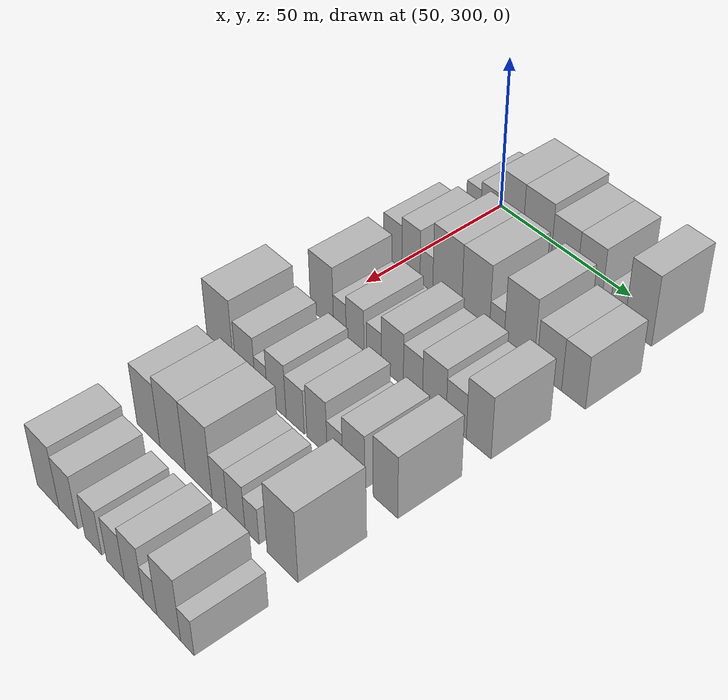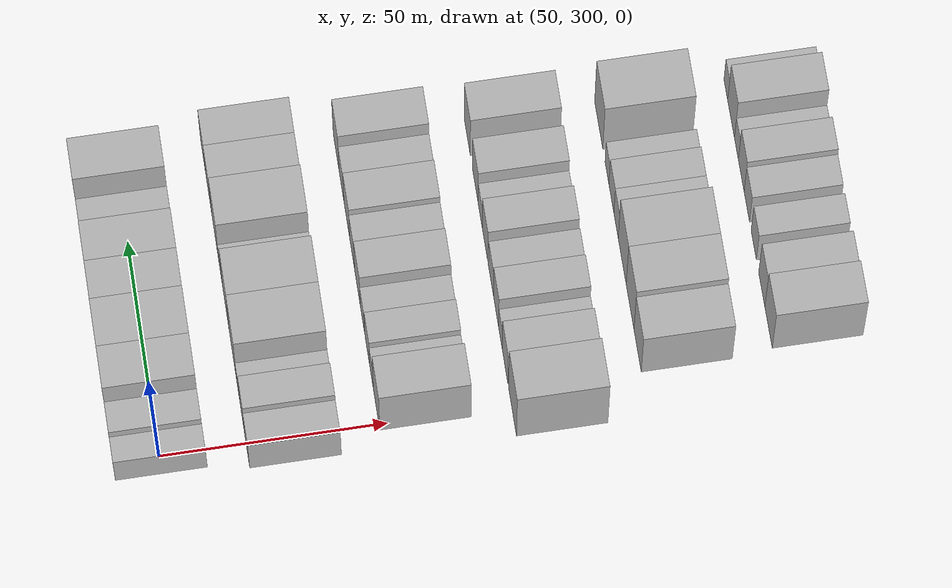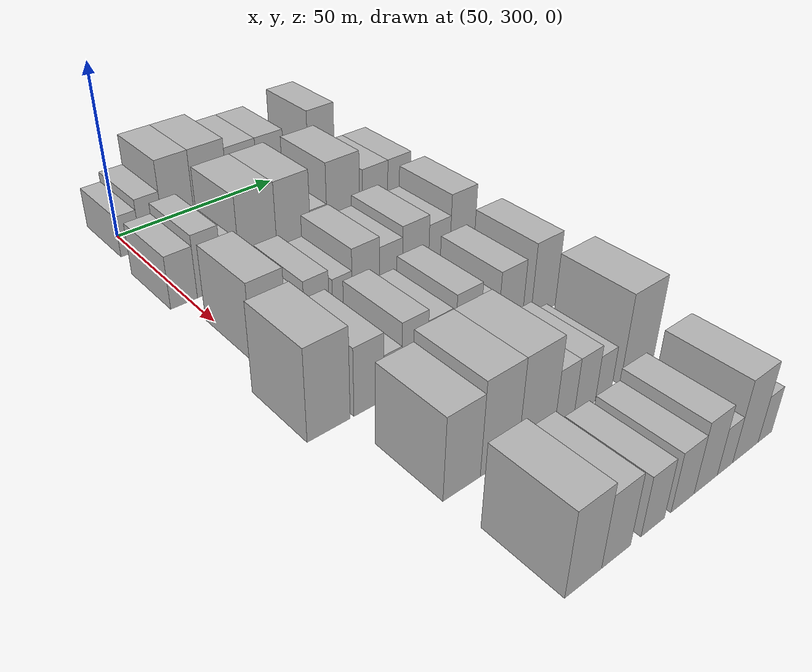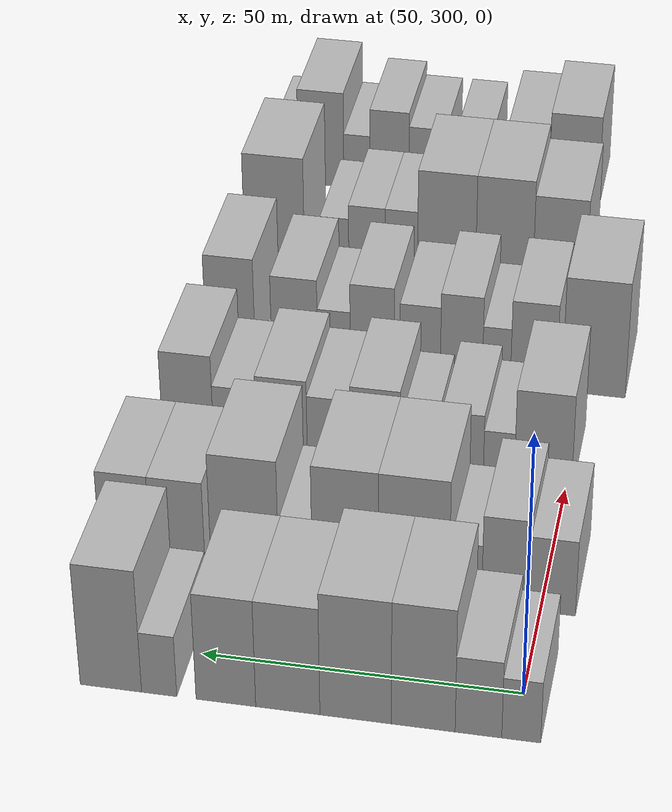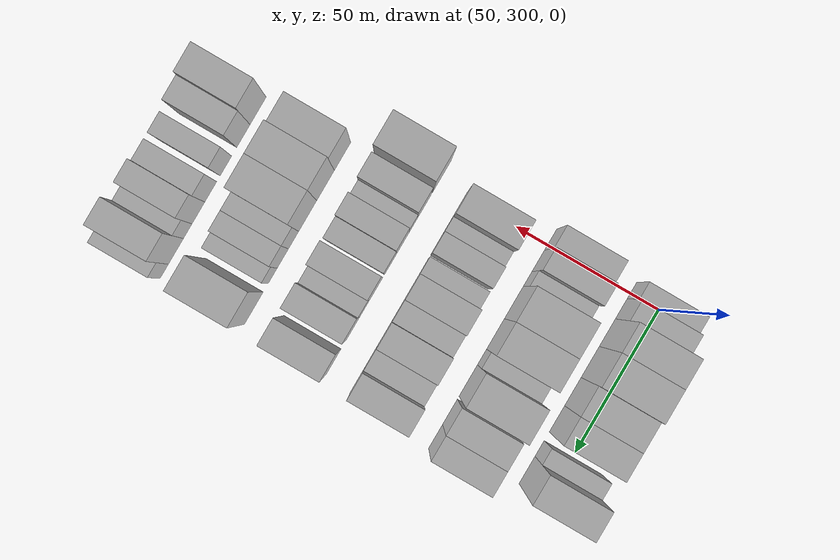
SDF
<sdf version="1.6">
 <world name="default">
  <model name="building_80">
   <static>1</static>
   <pose>50.0000 299.0032 0 0.000000 0.000000 0.000000</pose>
   <link name="link">
    <pose>0 0 6.00 0 0 0</pose>
    <collision name="collision"><geometry><box><size>20.0000 5.8440 12.0000</size></box></geometry></collision>
    <visual name="visual">
     <cast_shadows>0</cast_shadows>
     <geometry><box><size>20.0000 5.8440 12.0000</size></box></geometry>
     <material>
      <script>
       <uri>model://HANNAS_wall/materials/scripts</uri>
       <uri>model://HANNAS_wall/materials/textures</uri>
       <name>vrc/HANNAS_wall</name>
      </script>
     </material>
    </visual>
   </link>
  </model>
  <model name="building_81">
   <static>1</static>
   <pose>50.0000 305.4336 0 0.000000 0.000000 0.000000</pose>
   <link name="link">
    <pose>0 0 7.50 0 0 0</pose>
    <collision name="collision"><geometry><box><size>20.0000 7.0169 15.0000</size></box></geometry></collision>
    <visual name="visual">
     <cast_shadows>0</cast_shadows>
     <geometry><box><size>20.0000 7.0169 15.0000</size></box></geometry>
     <material>
      <script>
       <uri>model://HANNAS_wall/materials/scripts</uri>
       <uri>model://HANNAS_wall/materials/textures</uri>
       <name>vrc/HANNAS_wall</name>
      </script>
     </material>
    </visual>
   </link>
  </model>
  <model name="building_82">
   <static>1</static>
   <pose>50.0000 313.7596 0 0.000000 0.000000 0.000000</pose>
   <link name="link">
    <pose>0 0 12.00 0 0 0</pose>
    <collision name="collision"><geometry><box><size>20.0000 9.6350 24.0000</size></box></geometry></collision>
    <visual name="visual">
     <cast_shadows>0</cast_shadows>
     <geometry><box><size>20.0000 9.6350 24.0000</size></box></geometry>
     <material>
      <script>
       <uri>model://HANNAS_wall/materials/scripts</uri>
       <uri>model://HANNAS_wall/materials/textures</uri>
       <name>vrc/HANNAS_wall</name>
      </script>
     </material>
    </visual>
   </link>
  </model>
  <model name="building_83">
   <static>1</static>
   <pose>50.0000 324.0358 0 0.000000 0.000000 0.000000</pose>
   <link name="link">
    <pose>0 0 12.00 0 0 0</pose>
    <collision name="collision"><geometry><box><size>20.0000 10.9174 24.0000</size></box></geometry></collision>
    <visual name="visual">
     <cast_shadows>0</cast_shadows>
     <geometry><box><size>20.0000 10.9174 24.0000</size></box></geometry>
     <material>
      <script>
       <uri>model://HANNAS_wall/materials/scripts</uri>
       <uri>model://HANNAS_wall/materials/textures</uri>
       <name>vrc/HANNAS_wall</name>
      </script>
     </material>
    </visual>
   </link>
  </model>
  <model name="building_84">
   <static>1</static>
   <pose>50.0000 334.4236 0 0.000000 0.000000 0.000000</pose>
   <link name="link">
    <pose>0 0 10.50 0 0 0</pose>
    <collision name="collision"><geometry><box><size>20.0000 9.8582 21.0000</size></box></geometry></collision>
    <visual name="visual">
     <cast_shadows>0</cast_shadows>
     <geometry><box><size>20.0000 9.8582 21.0000</size></box></geometry>
     <material>
      <script>
       <uri>model://HANNAS_wall/materials/scripts</uri>
       <uri>model://HANNAS_wall/materials/textures</uri>
       <name>vrc/HANNAS_wall</name>
      </script>
     </material>
    </visual>
   </link>
  </model>
  <model name="building_85">
   <static>1</static>
   <pose>50.0000 343.9671 0 0.000000 0.000000 0.000000</pose>
   <link name="link">
    <pose>0 0 10.50 0 0 0</pose>
    <collision name="collision"><geometry><box><size>20.0000 9.2290 21.0000</size></box></geometry></collision>
    <visual name="visual">
     <cast_shadows>0</cast_shadows>
     <geometry><box><size>20.0000 9.2290 21.0000</size></box></geometry>
     <material>
      <script>
       <uri>model://HANNAS_wall/materials/scripts</uri>
       <uri>model://HANNAS_wall/materials/textures</uri>
       <name>vrc/HANNAS_wall</name>
      </script>
     </material>
    </visual>
   </link>
  </model>
  <model name="building_86">
   <static>1</static>
   <pose>50.0000 354.3239 0 0.000000 0.000000 0.000000</pose>
   <link name="link">
    <pose>0 0 6.00 0 0 0</pose>
    <collision name="collision"><geometry><box><size>20.0000 5.4845 12.0000</size></box></geometry></collision>
    <visual name="visual">
     <cast_shadows>0</cast_shadows>
     <geometry><box><size>20.0000 5.4845 12.0000</size></box></geometry>
     <material>
      <script>
       <uri>model://HANNAS_wall/materials/scripts</uri>
       <uri>model://HANNAS_wall/materials/textures</uri>
       <name>vrc/HANNAS_wall</name>
      </script>
     </material>
    </visual>
   </link>
  </model>
  <model name="building_87">
   <static>1</static>
   <pose>50.0000 361.8698 0 0.000000 0.000000 0.000000</pose>
   <link name="link">
    <pose>0 0 12.00 0 0 0</pose>
    <collision name="collision"><geometry><box><size>20.0000 9.6073 24.0000</size></box></geometry></collision>
    <visual name="visual">
     <cast_shadows>0</cast_shadows>
     <geometry><box><size>20.0000 9.6073 24.0000</size></box></geometry>
     <material>
      <script>
       <uri>model://HANNAS_wall/materials/scripts</uri>
       <uri>model://HANNAS_wall/materials/textures</uri>
       <name>vrc/HANNAS_wall</name>
      </script>
     </material>
    </visual>
   </link>
  </model>
  <model name="building_195">
   <static>1</static>
   <pose>79.0000 298.1936 0 0.000000 0.000000 0.000000</pose>
   <link name="link">
    <pose>0 0 7.50 0 0 0</pose>
    <collision name="collision"><geometry><box><size>20.0000 7.4276 15.0000</size></box></geometry></collision>
    <visual name="visual">
     <cast_shadows>0</cast_shadows>
     <geometry><box><size>20.0000 7.4276 15.0000</size></box></geometry>
     <material>
      <script>
       <uri>model://HANNAS_wall/materials/scripts</uri>
       <uri>model://HANNAS_wall/materials/textures</uri>
       <name>vrc/HANNAS_wall</name>
      </script>
     </material>
    </visual>
   </link>
  </model>
  <model name="building_196">
   <static>1</static>
   <pose>79.0000 305.6359 0 0.000000 0.000000 0.000000</pose>
   <link name="link">
    <pose>0 0 9.00 0 0 0</pose>
    <collision name="collision"><geometry><box><size>20.0000 7.4569 18.0000</size></box></geometry></collision>
    <visual name="visual">
     <cast_shadows>0</cast_shadows>
     <geometry><box><size>20.0000 7.4569 18.0000</size></box></geometry>
     <material>
      <script>
       <uri>model://HANNAS_wall/materials/scripts</uri>
       <uri>model://HANNAS_wall/materials/textures</uri>
       <name>vrc/HANNAS_wall</name>
      </script>
     </material>
    </visual>
   </link>
  </model>
  <model name="building_197">
   <static>1</static>
   <pose>79.0000 311.9409 0 0.000000 0.000000 0.000000</pose>
   <link name="link">
    <pose>0 0 6.00 0 0 0</pose>
    <collision name="collision"><geometry><box><size>20.0000 5.1532 12.0000</size></box></geometry></collision>
    <visual name="visual">
     <cast_shadows>0</cast_shadows>
     <geometry><box><size>20.0000 5.1532 12.0000</size></box></geometry>
     <material>
      <script>
       <uri>model://HANNAS_wall/materials/scripts</uri>
       <uri>model://HANNAS_wall/materials/textures</uri>
       <name>vrc/HANNAS_wall</name>
      </script>
     </material>
    </visual>
   </link>
  </model>
  <model name="building_198">
   <static>1</static>
   <pose>79.0000 320.1947 0 0.000000 0.000000 0.000000</pose>
   <link name="link">
    <pose>0 0 12.00 0 0 0</pose>
    <collision name="collision"><geometry><box><size>20.0000 11.3543 24.0000</size></box></geometry></collision>
    <visual name="visual">
     <cast_shadows>0</cast_shadows>
     <geometry><box><size>20.0000 11.3543 24.0000</size></box></geometry>
     <material>
      <script>
       <uri>model://HANNAS_wall/materials/scripts</uri>
       <uri>model://HANNAS_wall/materials/textures</uri>
       <name>vrc/HANNAS_wall</name>
      </script>
     </material>
    </visual>
   </link>
  </model>
  <model name="building_199">
   <static>1</static>
   <pose>79.0000 331.1998 0 0.000000 0.000000 0.000000</pose>
   <link name="link">
    <pose>0 0 12.00 0 0 0</pose>
    <collision name="collision"><geometry><box><size>20.0000 10.6559 24.0000</size></box></geometry></collision>
    <visual name="visual">
     <cast_shadows>0</cast_shadows>
     <geometry><box><size>20.0000 10.6559 24.0000</size></box></geometry>
     <material>
      <script>
       <uri>model://HANNAS_wall/materials/scripts</uri>
       <uri>model://HANNAS_wall/materials/textures</uri>
       <name>vrc/HANNAS_wall</name>
      </script>
     </material>
    </visual>
   </link>
  </model>
  <model name="building_200">
   <static>1</static>
   <pose>79.0000 339.2460 0 0.000000 0.000000 0.000000</pose>
   <link name="link">
    <pose>0 0 6.00 0 0 0</pose>
    <collision name="collision"><geometry><box><size>20.0000 5.4364 12.0000</size></box></geometry></collision>
    <visual name="visual">
     <cast_shadows>0</cast_shadows>
     <geometry><box><size>20.0000 5.4364 12.0000</size></box></geometry>
     <material>
      <script>
       <uri>model://HANNAS_wall/materials/scripts</uri>
       <uri>model://HANNAS_wall/materials/textures</uri>
       <name>vrc/HANNAS_wall</name>
      </script>
     </material>
    </visual>
   </link>
  </model>
  <model name="building_201">
   <static>1</static>
   <pose>79.0000 347.4879 0 0.000000 0.000000 0.000000</pose>
   <link name="link">
    <pose>0 0 12.00 0 0 0</pose>
    <collision name="collision"><geometry><box><size>20.0000 11.0475 24.0000</size></box></geometry></collision>
    <visual name="visual">
     <cast_shadows>0</cast_shadows>
     <geometry><box><size>20.0000 11.0475 24.0000</size></box></geometry>
     <material>
      <script>
       <uri>model://HANNAS_wall/materials/scripts</uri>
       <uri>model://HANNAS_wall/materials/textures</uri>
       <name>vrc/HANNAS_wall</name>
      </script>
     </material>
    </visual>
   </link>
  </model>
  <model name="building_202">
   <static>1</static>
   <pose>79.0000 358.4823 0 0.000000 0.000000 0.000000</pose>
   <link name="link">
    <pose>0 0 9.00 0 0 0</pose>
    <collision name="collision"><geometry><box><size>20.0000 8.9412 18.0000</size></box></geometry></collision>
    <visual name="visual">
     <cast_shadows>0</cast_shadows>
     <geometry><box><size>20.0000 8.9412 18.0000</size></box></geometry>
     <material>
      <script>
       <uri>model://HANNAS_wall/materials/scripts</uri>
       <uri>model://HANNAS_wall/materials/textures</uri>
       <name>vrc/HANNAS_wall</name>
      </script>
     </material>
    </visual>
   </link>
  </model>
  <model name="building_203">
   <static>1</static>
   <pose>79.0000 367.1242 0 0.000000 0.000000 0.000000</pose>
   <link name="link">
    <pose>0 0 9.00 0 0 0</pose>
    <collision name="collision"><geometry><box><size>20.0000 8.3426 18.0000</size></box></geometry></collision>
    <visual name="visual">
     <cast_shadows>0</cast_shadows>
     <geometry><box><size>20.0000 8.3426 18.0000</size></box></geometry>
     <material>
      <script>
       <uri>model://HANNAS_wall/materials/scripts</uri>
       <uri>model://HANNAS_wall/materials/textures</uri>
       <name>vrc/HANNAS_wall</name>
      </script>
     </material>
    </visual>
   </link>
  </model>
  <model name="building_313">
   <static>1</static>
   <pose>108.0000 303.5539 0 0.000000 0.000000 0.000000</pose>
   <link name="link">
    <pose>0 0 10.50 0 0 0</pose>
    <collision name="collision"><geometry><box><size>20.0000 9.5860 21.0000</size></box></geometry></collision>
    <visual name="visual">
     <cast_shadows>0</cast_shadows>
     <geometry><box><size>20.0000 9.5860 21.0000</size></box></geometry>
     <material>
      <script>
       <uri>model://HANNAS_wall/materials/scripts</uri>
       <uri>model://HANNAS_wall/materials/textures</uri>
       <name>vrc/HANNAS_wall</name>
      </script>
     </material>
    </visual>
   </link>
  </model>
  <model name="building_314">
   <static>1</static>
   <pose>108.0000 310.9332 0 0.000000 0.000000 0.000000</pose>
   <link name="link">
    <pose>0 0 6.00 0 0 0</pose>
    <collision name="collision"><geometry><box><size>20.0000 5.1725 12.0000</size></box></geometry></collision>
    <visual name="visual">
     <cast_shadows>0</cast_shadows>
     <geometry><box><size>20.0000 5.1725 12.0000</size></box></geometry>
     <material>
      <script>
       <uri>model://HANNAS_wall/materials/scripts</uri>
       <uri>model://HANNAS_wall/materials/textures</uri>
       <name>vrc/HANNAS_wall</name>
      </script>
     </material>
    </visual>
   </link>
  </model>
  <model name="building_315">
   <static>1</static>
   <pose>108.0000 317.0932 0 0.000000 0.000000 0.000000</pose>
   <link name="link">
    <pose>0 0 7.50 0 0 0</pose>
    <collision name="collision"><geometry><box><size>20.0000 7.1476 15.0000</size></box></geometry></collision>
    <visual name="visual">
     <cast_shadows>0</cast_shadows>
     <geometry><box><size>20.0000 7.1476 15.0000</size></box></geometry>
     <material>
      <script>
       <uri>model://HANNAS_wall/materials/scripts</uri>
       <uri>model://HANNAS_wall/materials/textures</uri>
       <name>vrc/HANNAS_wall</name>
      </script>
     </material>
    </visual>
   </link>
  </model>
  <model name="building_316">
   <static>1</static>
   <pose>108.0000 324.5986 0 0.000000 0.000000 0.000000</pose>
   <link name="link">
    <pose>0 0 6.00 0 0 0</pose>
    <collision name="collision"><geometry><box><size>20.0000 5.8631 12.0000</size></box></geometry></collision>
    <visual name="visual">
     <cast_shadows>0</cast_shadows>
     <geometry><box><size>20.0000 5.8631 12.0000</size></box></geometry>
     <material>
      <script>
       <uri>model://HANNAS_wall/materials/scripts</uri>
       <uri>model://HANNAS_wall/materials/textures</uri>
       <name>vrc/HANNAS_wall</name>
      </script>
     </material>
    </visual>
   </link>
  </model>
  <model name="building_317">
   <static>1</static>
   <pose>108.0000 331.7736 0 0.000000 0.000000 0.000000</pose>
   <link name="link">
    <pose>0 0 9.00 0 0 0</pose>
    <collision name="collision"><geometry><box><size>20.0000 8.4869 18.0000</size></box></geometry></collision>
    <visual name="visual">
     <cast_shadows>0</cast_shadows>
     <geometry><box><size>20.0000 8.4869 18.0000</size></box></geometry>
     <material>
      <script>
       <uri>model://HANNAS_wall/materials/scripts</uri>
       <uri>model://HANNAS_wall/materials/textures</uri>
       <name>vrc/HANNAS_wall</name>
      </script>
     </material>
    </visual>
   </link>
  </model>
  <model name="building_318">
   <static>1</static>
   <pose>108.0000 339.6451 0 0.000000 0.000000 0.000000</pose>
   <link name="link">
    <pose>0 0 7.50 0 0 0</pose>
    <collision name="collision"><geometry><box><size>20.0000 7.2560 15.0000</size></box></geometry></collision>
    <visual name="visual">
     <cast_shadows>0</cast_shadows>
     <geometry><box><size>20.0000 7.2560 15.0000</size></box></geometry>
     <material>
      <script>
       <uri>model://HANNAS_wall/materials/scripts</uri>
       <uri>model://HANNAS_wall/materials/textures</uri>
       <name>vrc/HANNAS_wall</name>
      </script>
     </material>
    </visual>
   </link>
  </model>
  <model name="building_319">
   <static>1</static>
   <pose>108.0000 347.6395 0 0.000000 0.000000 0.000000</pose>
   <link name="link">
    <pose>0 0 9.00 0 0 0</pose>
    <collision name="collision"><geometry><box><size>20.0000 8.7328 18.0000</size></box></geometry></collision>
    <visual name="visual">
     <cast_shadows>0</cast_shadows>
     <geometry><box><size>20.0000 8.7328 18.0000</size></box></geometry>
     <material>
      <script>
       <uri>model://HANNAS_wall/materials/scripts</uri>
       <uri>model://HANNAS_wall/materials/textures</uri>
       <name>vrc/HANNAS_wall</name>
      </script>
     </material>
    </visual>
   </link>
  </model>
  <model name="building_320">
   <static>1</static>
   <pose>108.0000 355.6646 0 0.000000 0.000000 0.000000</pose>
   <link name="link">
    <pose>0 0 7.50 0 0 0</pose>
    <collision name="collision"><geometry><box><size>20.0000 7.3175 15.0000</size></box></geometry></collision>
    <visual name="visual">
     <cast_shadows>0</cast_shadows>
     <geometry><box><size>20.0000 7.3175 15.0000</size></box></geometry>
     <material>
      <script>
       <uri>model://HANNAS_wall/materials/scripts</uri>
       <uri>model://HANNAS_wall/materials/textures</uri>
       <name>vrc/HANNAS_wall</name>
      </script>
     </material>
    </visual>
   </link>
  </model>
  <model name="building_321">
   <static>1</static>
   <pose>108.0000 363.7197 0 0.000000 0.000000 0.000000</pose>
   <link name="link">
    <pose>0 0 10.50 0 0 0</pose>
    <collision name="collision"><geometry><box><size>20.0000 8.7928 21.0000</size></box></geometry></collision>
    <visual name="visual">
     <cast_shadows>0</cast_shadows>
     <geometry><box><size>20.0000 8.7928 21.0000</size></box></geometry>
     <material>
      <script>
       <uri>model://HANNAS_wall/materials/scripts</uri>
       <uri>model://HANNAS_wall/materials/textures</uri>
       <name>vrc/HANNAS_wall</name>
      </script>
     </material>
    </visual>
   </link>
  </model>
  <model name="building_425">
   <static>1</static>
   <pose>137.0000 298.4681 0 0.000000 0.000000 0.000000</pose>
   <link name="link">
    <pose>0 0 12.00 0 0 0</pose>
    <collision name="collision"><geometry><box><size>20.0000 11.0515 24.0000</size></box></geometry></collision>
    <visual name="visual">
     <cast_shadows>0</cast_shadows>
     <geometry><box><size>20.0000 11.0515 24.0000</size></box></geometry>
     <material>
      <script>
       <uri>model://HANNAS_wall/materials/scripts</uri>
       <uri>model://HANNAS_wall/materials/textures</uri>
       <name>vrc/HANNAS_wall</name>
      </script>
     </material>
    </visual>
   </link>
  </model>
  <model name="building_426">
   <static>1</static>
   <pose>137.0000 309.0376 0 0.000000 0.000000 0.000000</pose>
   <link name="link">
    <pose>0 0 9.00 0 0 0</pose>
    <collision name="collision"><geometry><box><size>20.0000 8.0875 18.0000</size></box></geometry></collision>
    <visual name="visual">
     <cast_shadows>0</cast_shadows>
     <geometry><box><size>20.0000 8.0875 18.0000</size></box></geometry>
     <material>
      <script>
       <uri>model://HANNAS_wall/materials/scripts</uri>
       <uri>model://HANNAS_wall/materials/textures</uri>
       <name>vrc/HANNAS_wall</name>
      </script>
     </material>
    </visual>
   </link>
  </model>
  <model name="building_427">
   <static>1</static>
   <pose>137.0000 315.5574 0 0.000000 0.000000 0.000000</pose>
   <link name="link">
    <pose>0 0 6.00 0 0 0</pose>
    <collision name="collision"><geometry><box><size>20.0000 4.9521 12.0000</size></box></geometry></collision>
    <visual name="visual">
     <cast_shadows>0</cast_shadows>
     <geometry><box><size>20.0000 4.9521 12.0000</size></box></geometry>
     <material>
      <script>
       <uri>model://HANNAS_wall/materials/scripts</uri>
       <uri>model://HANNAS_wall/materials/textures</uri>
       <name>vrc/HANNAS_wall</name>
      </script>
     </material>
    </visual>
   </link>
  </model>
  <model name="building_428">
   <static>1</static>
   <pose>137.0000 321.7546 0 0.000000 0.000000 0.000000</pose>
   <link name="link">
    <pose>0 0 9.00 0 0 0</pose>
    <collision name="collision"><geometry><box><size>20.0000 7.4422 18.0000</size></box></geometry></collision>
    <visual name="visual">
     <cast_shadows>0</cast_shadows>
     <geometry><box><size>20.0000 7.4422 18.0000</size></box></geometry>
     <material>
      <script>
       <uri>model://HANNAS_wall/materials/scripts</uri>
       <uri>model://HANNAS_wall/materials/textures</uri>
       <name>vrc/HANNAS_wall</name>
      </script>
     </material>
    </visual>
   </link>
  </model>
  <model name="building_429">
   <static>1</static>
   <pose>137.0000 329.0757 0 0.000000 0.000000 0.000000</pose>
   <link name="link">
    <pose>0 0 7.50 0 0 0</pose>
    <collision name="collision"><geometry><box><size>20.0000 7.2001 15.0000</size></box></geometry></collision>
    <visual name="visual">
     <cast_shadows>0</cast_shadows>
     <geometry><box><size>20.0000 7.2001 15.0000</size></box></geometry>
     <material>
      <script>
       <uri>model://HANNAS_wall/materials/scripts</uri>
       <uri>model://HANNAS_wall/materials/textures</uri>
       <name>vrc/HANNAS_wall</name>
      </script>
     </material>
    </visual>
   </link>
  </model>
  <model name="building_430">
   <static>1</static>
   <pose>137.0000 337.6011 0 0.000000 0.000000 0.000000</pose>
   <link name="link">
    <pose>0 0 9.00 0 0 0</pose>
    <collision name="collision"><geometry><box><size>20.0000 7.8506 18.0000</size></box></geometry></collision>
    <visual name="visual">
     <cast_shadows>0</cast_shadows>
     <geometry><box><size>20.0000 7.8506 18.0000</size></box></geometry>
     <material>
      <script>
       <uri>model://HANNAS_wall/materials/scripts</uri>
       <uri>model://HANNAS_wall/materials/textures</uri>
       <name>vrc/HANNAS_wall</name>
      </script>
     </material>
    </visual>
   </link>
  </model>
  <model name="building_431">
   <static>1</static>
   <pose>137.0000 344.4548 0 0.000000 0.000000 0.000000</pose>
   <link name="link">
    <pose>0 0 6.00 0 0 0</pose>
    <collision name="collision"><geometry><box><size>20.0000 5.8569 12.0000</size></box></geometry></collision>
    <visual name="visual">
     <cast_shadows>0</cast_shadows>
     <geometry><box><size>20.0000 5.8569 12.0000</size></box></geometry>
     <material>
      <script>
       <uri>model://HANNAS_wall/materials/scripts</uri>
       <uri>model://HANNAS_wall/materials/textures</uri>
       <name>vrc/HANNAS_wall</name>
      </script>
     </material>
    </visual>
   </link>
  </model>
  <model name="building_432">
   <static>1</static>
   <pose>137.0000 351.5211 0 0.000000 0.000000 0.000000</pose>
   <link name="link">
    <pose>0 0 9.00 0 0 0</pose>
    <collision name="collision"><geometry><box><size>20.0000 8.2756 18.0000</size></box></geometry></collision>
    <visual name="visual">
     <cast_shadows>0</cast_shadows>
     <geometry><box><size>20.0000 8.2756 18.0000</size></box></geometry>
     <material>
      <script>
       <uri>model://HANNAS_wall/materials/scripts</uri>
       <uri>model://HANNAS_wall/materials/textures</uri>
       <name>vrc/HANNAS_wall</name>
      </script>
     </material>
    </visual>
   </link>
  </model>
  <model name="building_433">
   <static>1</static>
   <pose>137.0000 363.0956 0 0.000000 0.000000 0.000000</pose>
   <link name="link">
    <pose>0 0 10.50 0 0 0</pose>
    <collision name="collision"><geometry><box><size>20.0000 8.8735 21.0000</size></box></geometry></collision>
    <visual name="visual">
     <cast_shadows>0</cast_shadows>
     <geometry><box><size>20.0000 8.8735 21.0000</size></box></geometry>
     <material>
      <script>
       <uri>model://HANNAS_wall/materials/scripts</uri>
       <uri>model://HANNAS_wall/materials/textures</uri>
       <name>vrc/HANNAS_wall</name>
      </script>
     </material>
    </visual>
   </link>
  </model>
  <model name="building_530">
   <static>1</static>
   <pose>166.0000 308.2287 0 0.000000 0.000000 0.000000</pose>
   <link name="link">
    <pose>0 0 10.50 0 0 0</pose>
    <collision name="collision"><geometry><box><size>20.0000 9.8226 21.0000</size></box></geometry></collision>
    <visual name="visual">
     <cast_shadows>0</cast_shadows>
     <geometry><box><size>20.0000 9.8226 21.0000</size></box></geometry>
     <material>
      <script>
       <uri>model://HANNAS_wall/materials/scripts</uri>
       <uri>model://HANNAS_wall/materials/textures</uri>
       <name>vrc/HANNAS_wall</name>
      </script>
     </material>
    </visual>
   </link>
  </model>
  <model name="building_531">
   <static>1</static>
   <pose>166.0000 318.4260 0 0.000000 0.000000 0.000000</pose>
   <link name="link">
    <pose>0 0 12.00 0 0 0</pose>
    <collision name="collision"><geometry><box><size>20.0000 10.5721 24.0000</size></box></geometry></collision>
    <visual name="visual">
     <cast_shadows>0</cast_shadows>
     <geometry><box><size>20.0000 10.5721 24.0000</size></box></geometry>
     <material>
      <script>
       <uri>model://HANNAS_wall/materials/scripts</uri>
       <uri>model://HANNAS_wall/materials/textures</uri>
       <name>vrc/HANNAS_wall</name>
      </script>
     </material>
    </visual>
   </link>
  </model>
  <model name="building_532">
   <static>1</static>
   <pose>166.0000 329.1045 0 0.000000 0.000000 0.000000</pose>
   <link name="link">
    <pose>0 0 12.00 0 0 0</pose>
    <collision name="collision"><geometry><box><size>20.0000 10.7848 24.0000</size></box></geometry></collision>
    <visual name="visual">
     <cast_shadows>0</cast_shadows>
     <geometry><box><size>20.0000 10.7848 24.0000</size></box></geometry>
     <material>
      <script>
       <uri>model://HANNAS_wall/materials/scripts</uri>
       <uri>model://HANNAS_wall/materials/textures</uri>
       <name>vrc/HANNAS_wall</name>
      </script>
     </material>
    </visual>
   </link>
  </model>
  <model name="building_533">
   <static>1</static>
   <pose>166.0000 337.5379 0 0.000000 0.000000 0.000000</pose>
   <link name="link">
    <pose>0 0 7.50 0 0 0</pose>
    <collision name="collision"><geometry><box><size>20.0000 6.0821 15.0000</size></box></geometry></collision>
    <visual name="visual">
     <cast_shadows>0</cast_shadows>
     <geometry><box><size>20.0000 6.0821 15.0000</size></box></geometry>
     <material>
      <script>
       <uri>model://HANNAS_wall/materials/scripts</uri>
       <uri>model://HANNAS_wall/materials/textures</uri>
       <name>vrc/HANNAS_wall</name>
      </script>
     </material>
    </visual>
   </link>
  </model>
  <model name="building_534">
   <static>1</static>
   <pose>166.0000 343.9760 0 0.000000 0.000000 0.000000</pose>
   <link name="link">
    <pose>0 0 7.50 0 0 0</pose>
    <collision name="collision"><geometry><box><size>20.0000 6.7942 15.0000</size></box></geometry></collision>
    <visual name="visual">
     <cast_shadows>0</cast_shadows>
     <geometry><box><size>20.0000 6.7942 15.0000</size></box></geometry>
     <material>
      <script>
       <uri>model://HANNAS_wall/materials/scripts</uri>
       <uri>model://HANNAS_wall/materials/textures</uri>
       <name>vrc/HANNAS_wall</name>
      </script>
     </material>
    </visual>
   </link>
  </model>
  <model name="building_535">
   <static>1</static>
   <pose>166.0000 350.0394 0 0.000000 0.000000 0.000000</pose>
   <link name="link">
    <pose>0 0 6.00 0 0 0</pose>
    <collision name="collision"><geometry><box><size>20.0000 5.3325 12.0000</size></box></geometry></collision>
    <visual name="visual">
     <cast_shadows>0</cast_shadows>
     <geometry><box><size>20.0000 5.3325 12.0000</size></box></geometry>
     <material>
      <script>
       <uri>model://HANNAS_wall/materials/scripts</uri>
       <uri>model://HANNAS_wall/materials/textures</uri>
       <name>vrc/HANNAS_wall</name>
      </script>
     </material>
    </visual>
   </link>
  </model>
  <model name="building_536">
   <static>1</static>
   <pose>166.0000 361.3613 0 0.000000 0.000000 0.000000</pose>
   <link name="link">
    <pose>0 0 12.00 0 0 0</pose>
    <collision name="collision"><geometry><box><size>20.0000 11.3115 24.0000</size></box></geometry></collision>
    <visual name="visual">
     <cast_shadows>0</cast_shadows>
     <geometry><box><size>20.0000 11.3115 24.0000</size></box></geometry>
     <material>
      <script>
       <uri>model://HANNAS_wall/materials/scripts</uri>
       <uri>model://HANNAS_wall/materials/textures</uri>
       <name>vrc/HANNAS_wall</name>
      </script>
     </material>
    </visual>
   </link>
  </model>
  <model name="building_643">
   <static>1</static>
   <pose>195.0000 309.2205 0 0.000000 0.000000 0.000000</pose>
   <link name="link">
    <pose>0 0 10.50 0 0 0</pose>
    <collision name="collision"><geometry><box><size>20.0000 9.6371 21.0000</size></box></geometry></collision>
    <visual name="visual">
     <cast_shadows>0</cast_shadows>
     <geometry><box><size>20.0000 9.6371 21.0000</size></box></geometry>
     <material>
      <script>
       <uri>model://HANNAS_wall/materials/scripts</uri>
       <uri>model://HANNAS_wall/materials/textures</uri>
       <name>vrc/HANNAS_wall</name>
      </script>
     </material>
    </visual>
   </link>
  </model>
  <model name="building_644">
   <static>1</static>
   <pose>195.0000 318.0526 0 0.000000 0.000000 0.000000</pose>
   <link name="link">
    <pose>0 0 9.00 0 0 0</pose>
    <collision name="collision"><geometry><box><size>20.0000 8.0271 18.0000</size></box></geometry></collision>
    <visual name="visual">
     <cast_shadows>0</cast_shadows>
     <geometry><box><size>20.0000 8.0271 18.0000</size></box></geometry>
     <material>
      <script>
       <uri>model://HANNAS_wall/materials/scripts</uri>
       <uri>model://HANNAS_wall/materials/textures</uri>
       <name>vrc/HANNAS_wall</name>
      </script>
     </material>
    </visual>
   </link>
  </model>
  <model name="building_645">
   <static>1</static>
   <pose>195.0000 328.5287 0 0.000000 0.000000 0.000000</pose>
   <link name="link">
    <pose>0 0 7.50 0 0 0</pose>
    <collision name="collision"><geometry><box><size>20.0000 6.9250 15.0000</size></box></geometry></collision>
    <visual name="visual">
     <cast_shadows>0</cast_shadows>
     <geometry><box><size>20.0000 6.9250 15.0000</size></box></geometry>
     <material>
      <script>
       <uri>model://HANNAS_wall/materials/scripts</uri>
       <uri>model://HANNAS_wall/materials/textures</uri>
       <name>vrc/HANNAS_wall</name>
      </script>
     </material>
    </visual>
   </link>
  </model>
  <model name="building_646">
   <static>1</static>
   <pose>195.0000 337.5684 0 0.000000 0.000000 0.000000</pose>
   <link name="link">
    <pose>0 0 7.50 0 0 0</pose>
    <collision name="collision"><geometry><box><size>20.0000 7.1544 15.0000</size></box></geometry></collision>
    <visual name="visual">
     <cast_shadows>0</cast_shadows>
     <geometry><box><size>20.0000 7.1544 15.0000</size></box></geometry>
     <material>
      <script>
       <uri>model://HANNAS_wall/materials/scripts</uri>
       <uri>model://HANNAS_wall/materials/textures</uri>
       <name>vrc/HANNAS_wall</name>
      </script>
     </material>
    </visual>
   </link>
  </model>
  <model name="building_647">
   <static>1</static>
   <pose>195.0000 344.9567 0 0.000000 0.000000 0.000000</pose>
   <link name="link">
    <pose>0 0 9.00 0 0 0</pose>
    <collision name="collision"><geometry><box><size>20.0000 7.6221 18.0000</size></box></geometry></collision>
    <visual name="visual">
     <cast_shadows>0</cast_shadows>
     <geometry><box><size>20.0000 7.6221 18.0000</size></box></geometry>
     <material>
      <script>
       <uri>model://HANNAS_wall/materials/scripts</uri>
       <uri>model://HANNAS_wall/materials/textures</uri>
       <name>vrc/HANNAS_wall</name>
      </script>
     </material>
    </visual>
   </link>
  </model>
  <model name="building_648">
   <static>1</static>
   <pose>195.0000 351.3459 0 0.000000 0.000000 0.000000</pose>
   <link name="link">
    <pose>0 0 6.00 0 0 0</pose>
    <collision name="collision"><geometry><box><size>20.0000 5.1565 12.0000</size></box></geometry></collision>
    <visual name="visual">
     <cast_shadows>0</cast_shadows>
     <geometry><box><size>20.0000 5.1565 12.0000</size></box></geometry>
     <material>
      <script>
       <uri>model://HANNAS_wall/materials/scripts</uri>
       <uri>model://HANNAS_wall/materials/textures</uri>
       <name>vrc/HANNAS_wall</name>
      </script>
     </material>
    </visual>
   </link>
  </model>
  <model name="building_649">
   <static>1</static>
   <pose>195.0000 358.4110 0 0.000000 0.000000 0.000000</pose>
   <link name="link">
    <pose>0 0 10.50 0 0 0</pose>
    <collision name="collision"><geometry><box><size>20.0000 8.9737 21.0000</size></box></geometry></collision>
    <visual name="visual">
     <cast_shadows>0</cast_shadows>
     <geometry><box><size>20.0000 8.9737 21.0000</size></box></geometry>
     <material>
      <script>
       <uri>model://HANNAS_wall/materials/scripts</uri>
       <uri>model://HANNAS_wall/materials/textures</uri>
       <name>vrc/HANNAS_wall</name>
      </script>
     </material>
    </visual>
   </link>
  </model>
  <model name="building_650">
   <static>1</static>
   <pose>195.0000 365.3897 0 0.000000 0.000000 0.000000</pose>
   <link name="link">
    <pose>0 0 6.00 0 0 0</pose>
    <collision name="collision"><geometry><box><size>20.0000 4.9836 12.0000</size></box></geometry></collision>
    <visual name="visual">
     <cast_shadows>0</cast_shadows>
     <geometry><box><size>20.0000 4.9836 12.0000</size></box></geometry>
     <material>
      <script>
       <uri>model://HANNAS_wall/materials/scripts</uri>
       <uri>model://HANNAS_wall/materials/textures</uri>
       <name>vrc/HANNAS_wall</name>
      </script>
     </material>
    </visual>
   </link>
  </model>
 </world>
</sdf>
